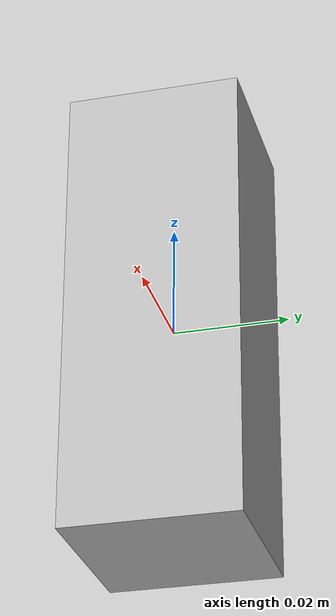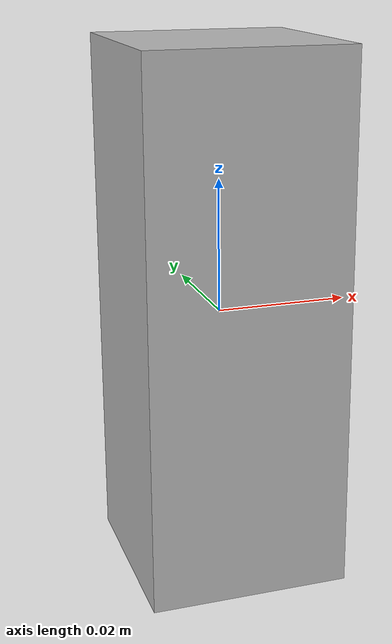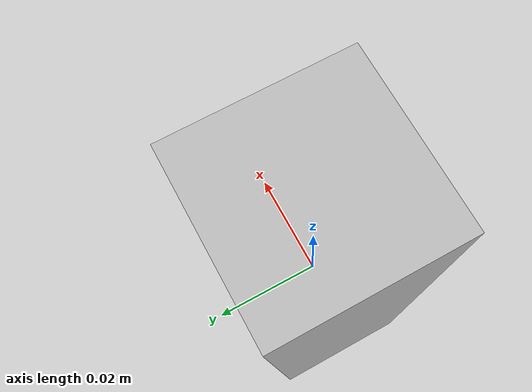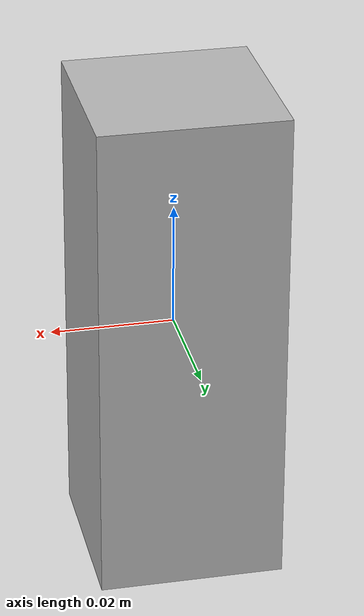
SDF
<?xml version="1.0" ?>
<sdf version="1.6">
  <model name="lidar_3d_v2">
    <link name="link_3d">
      <pose>0 0 0 0 0 0</pose>
      <inertial>
        <pose>0 0 0.0435 0 0 0</pose>
        <mass>0.001</mass>
        <inertia>
          <ixx>0.0001</ixx>
          <ixy>0</ixy>
          <ixz>0</ixz>
          <iyy>0.0001</iyy>
          <iyz>0</iyz>
          <izz>0.0001</izz>
        </inertia>
      </inertial>
      <collision name="collision_base">
        <pose>0 0 0.0205 0 0 0</pose>
        <geometry>
          <box>
            <size>0.06 0.06 0.041</size>
          </box>
        </geometry>
      </collision>
      <collision name="collision_mid">
        <pose>0 0 0.055 0 0 0</pose>
        <geometry>
          <cylinder>
            <radius>0.025</radius>
            <length>0.028</length>
          </cylinder>
        </geometry>
      </collision>
      <collision name="collision_top">
        <pose>0 0 0.078 0 0 0</pose>
        <geometry>
          <box>
            <size>0.056 0.056 0.018</size>
          </box>
        </geometry>
      </collision>
      <visual name="visual">
        <geometry>
          <box>
            <size>0.03 0.03 0.08</size>
          </box>
        </geometry>
      </visual>
      <sensor name="lidar_3d_v2" type="gpu_lidar">
        <pose>0 0 0.055 0 0 0</pose>
        <ray>
          <scan>
            <horizontal>
              <samples>720</samples>
              <resolution>1</resolution>
              <min_angle>-3.14159265</min_angle>
              <max_angle>3.14159265</max_angle>
            </horizontal>
            <!-- Vertical scan for 3D capability -->
            <vertical>
              <samples>32</samples>
              <resolution>1</resolution>
              <min_angle>-0.35</min_angle>
              <max_angle>0.35</max_angle>
          </vertical>
          </scan>
          <range>
            <min>0.1</min>
            <max>250</max>
            <resolution>0.01</resolution>
          </range>
          <noise>
            <type>gaussian</type>
            <mean>0.0</mean>
            <stddev>0.001</stddev>
          </noise>
        </ray>
        <always_on>1</always_on>
        <update_rate>10</update_rate>
        <visualize>false</visualize>
      </sensor>
    </link>
  </model>
</sdf>
